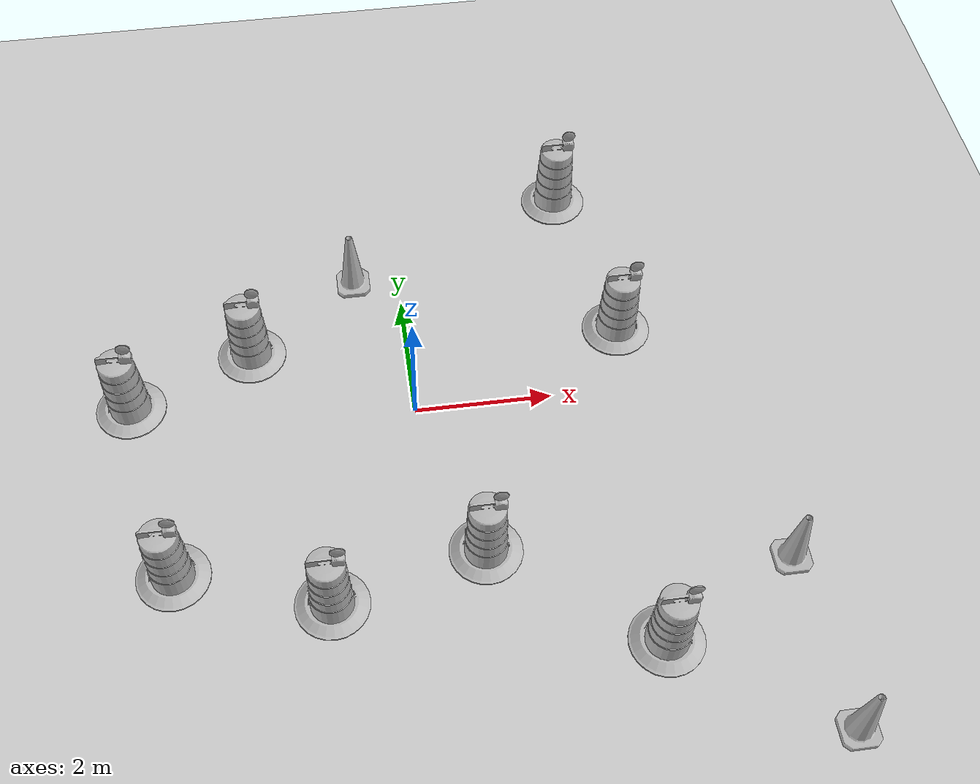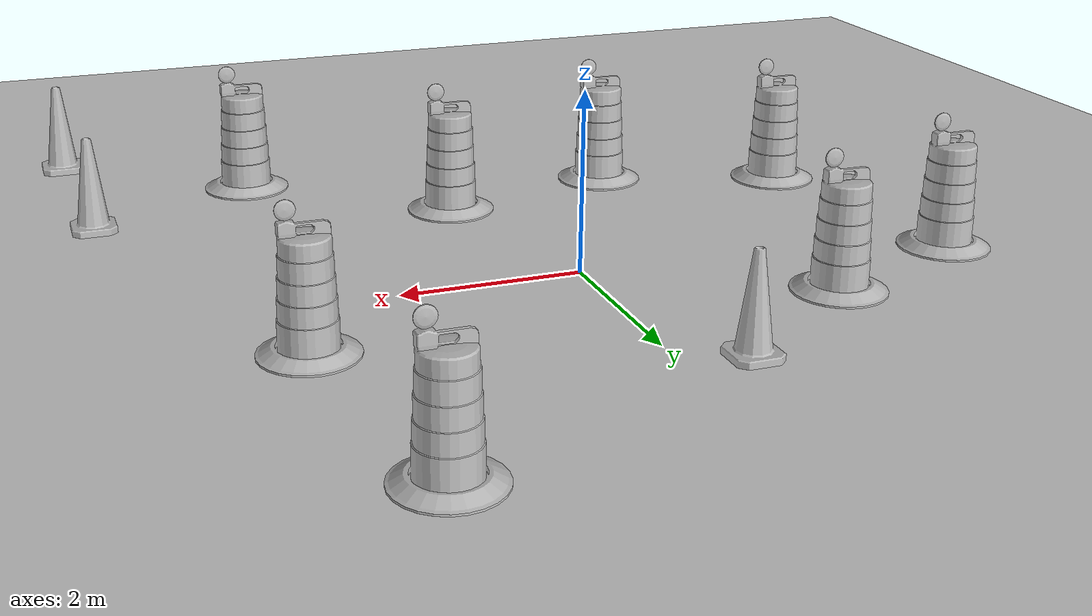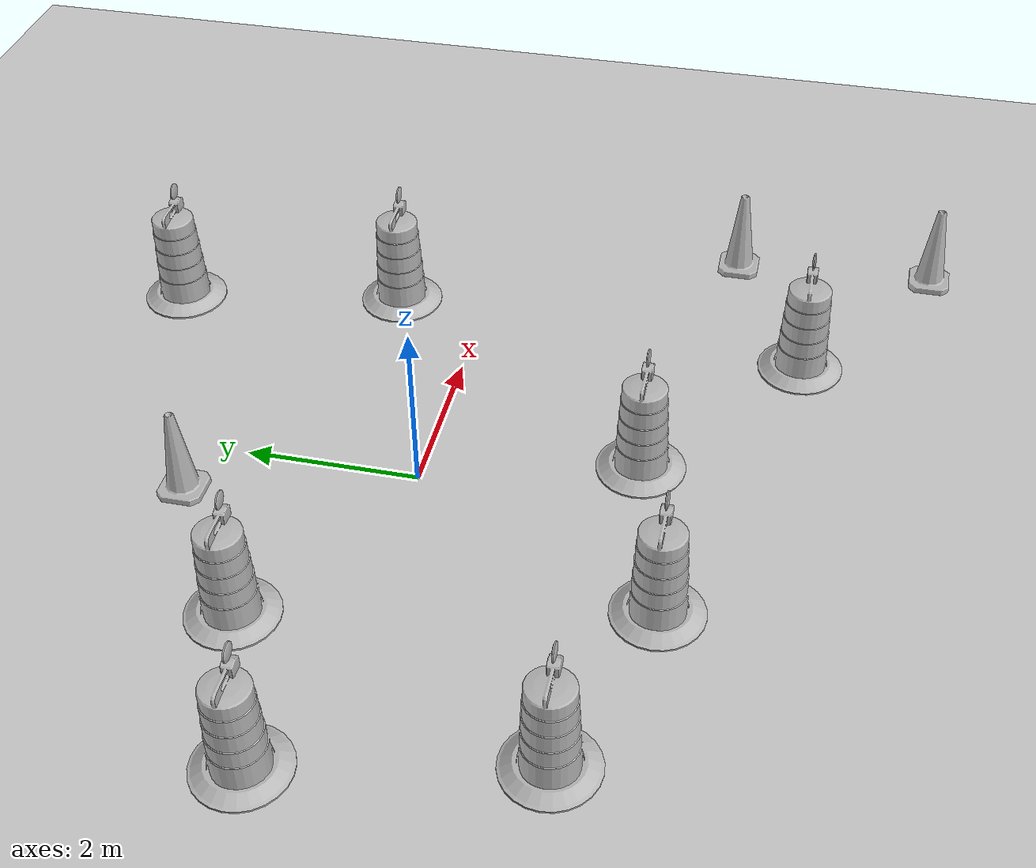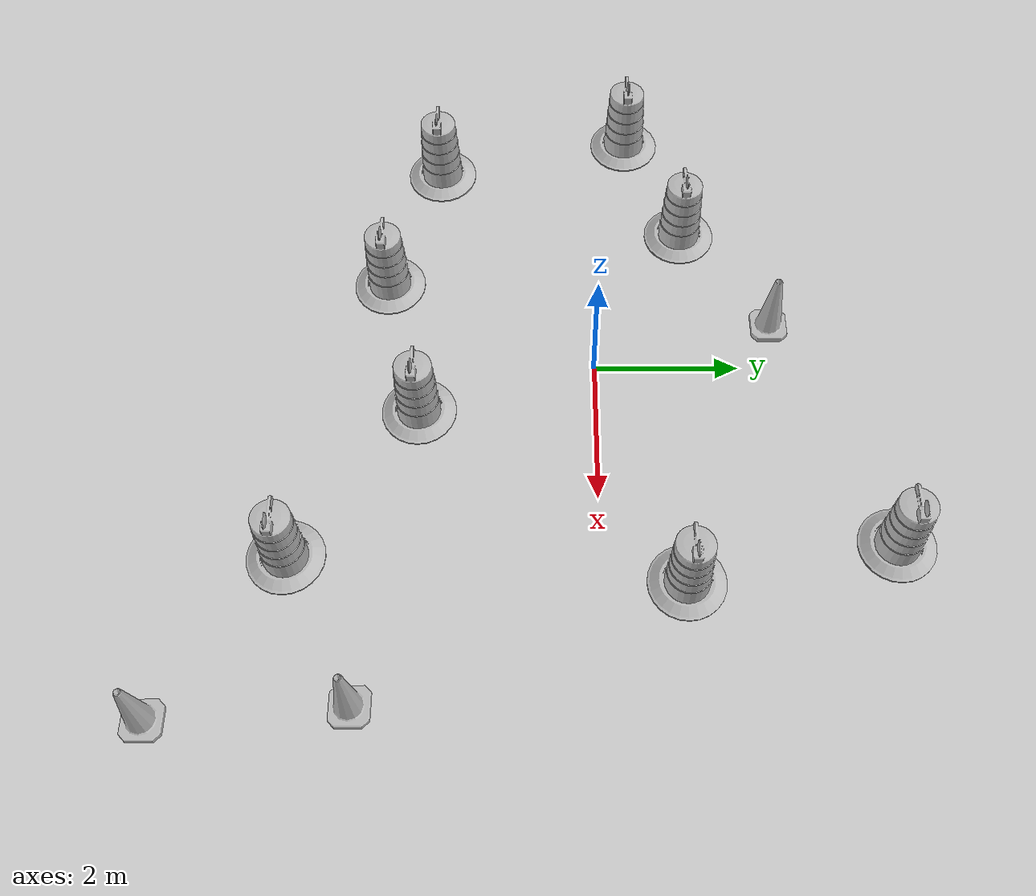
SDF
<sdf version="1.7">
 <world name="default">
  <light name="sun" type="directional">
   <pose>0 0 10 0 -0 0</pose>
   <diffuse>0.8 0.8 0.8 1</diffuse>
   <specular>0.2 0.2 0.2 1</specular>
   <attenuation>
    <range>1000</range>
    <constant>0.9</constant>
    <linear>0.01</linear>
    <quadratic>0.001</quadratic>
   </attenuation>
   <direction>-0.5 0.1 -0.9</direction>
   <spot><inner_angle>0</inner_angle><outer_angle>0</outer_angle><falloff>0</falloff></spot>
  </light>
  <model name="ground_plane">
   <static>1</static>
   <link name="link">
    <collision name="collision">
     <geometry><plane><normal>0 0 1</normal><size>100 100</size></plane></geometry>
     <surface><friction><ode><mu>100</mu><mu2>50</mu2></ode></friction></surface>
    </collision>
    <visual name="visual">
     <cast_shadows>0</cast_shadows>
     <geometry><plane><normal>0 0 1</normal><size>100 100</size></plane></geometry>
     <material>
      <script><uri>file://media/materials/scripts/gazebo.material</uri><name>Gazebo/Grey</name></script>
     </material>
    </visual>
   </link>
  </model>
  <gravity>0 0 -9.8</gravity>
  <magnetic_field>6e-06 2.3e-05 -4.2e-05</magnetic_field>
  <atmosphere type="adiabatic"/>
  <physics type="ode">
   <max_step_size>0.001</max_step_size>
   <real_time_factor>1</real_time_factor>
   <real_time_update_rate>1000</real_time_update_rate>
  </physics>
  <scene><ambient>0.4 0.4 0.4 1</ambient><background>0.7 0.7 0.7 1</background><shadows>1</shadows></scene>
  <audio><device>default</device></audio>
  <spherical_coordinates>
   <surface_model>EARTH_WGS84</surface_model>
   <latitude_deg>0</latitude_deg>
   <longitude_deg>0</longitude_deg>
   <elevation>0</elevation>
   <heading_deg>0</heading_deg>
  </spherical_coordinates>
  <model name="Construction Cone">
   <link name="link">
    <collision name="collision">
     <geometry>
      <mesh><scale>10 10 10</scale><uri>model://construction_cone/meshes/construction_cone.dae</uri></mesh>
     </geometry>
    </collision>
    <visual name="visual">
     <geometry>
      <mesh><scale>10 10 10</scale><uri>model://construction_cone/meshes/construction_cone.dae</uri></mesh>
     </geometry>
    </visual>
    <inertial>
     <inertia><ixx>1</ixx><ixy>0</ixy><ixz>0</ixz><iyy>1</iyy><iyz>0</iyz><izz>1</izz></inertia>
     <mass>1</mass>
    </inertial>
   </link>
   <pose>4.9183 -5.49758 -0 0 -1e-06 0</pose>
  </model>
  <model name="Construction Barrel">
   <link name="link">
    <inertial>
     <pose>0 0 0.4 0 -0 0</pose>
     <mass>500</mass>
     <inertia><ixx>51.2096</ixx><iyy>51.2096</iyy><izz>25</izz><ixy>0</ixy><ixz>0</ixz><iyz>0</iyz></inertia>
    </inertial>
    <collision name="collision">
     <geometry><mesh><uri>model://construction_barrel/meshes/construction_barrel.dae</uri></mesh></geometry>
    </collision>
    <visual name="visual">
     <geometry><mesh><uri>model://construction_barrel/meshes/construction_barrel.dae</uri></mesh></geometry>
    </visual>
   </link>
   <pose>2.70086 3.82418 -0 1e-06 -1e-06 -2.8e-05</pose>
  </model>
  <model name="Construction Barrel_0">
   <link name="link">
    <inertial>
     <pose>0 0 0.4 0 -0 0</pose>
     <mass>500</mass>
     <inertia><ixx>51.2096</ixx><iyy>51.2096</iyy><izz>25</izz><ixy>0</ixy><ixz>0</ixz><iyz>0</iyz></inertia>
    </inertial>
    <collision name="collision">
     <geometry><mesh><uri>model://construction_barrel/meshes/construction_barrel.dae</uri></mesh></geometry>
    </collision>
    <visual name="visual">
     <geometry><mesh><uri>model://construction_barrel/meshes/construction_barrel.dae</uri></mesh></geometry>
    </visual>
   </link>
   <pose>-4.12475 0.563868 -1e-06 -3e-06 -1e-06 -2.8e-05</pose>
  </model>
  <model name="Construction Barrel_clone">
   <link name="link">
    <inertial>
     <pose>0 0 0.4 0 -0 0</pose>
     <mass>500</mass>
     <inertia><ixx>51.2096</ixx><iyy>51.2096</iyy><izz>25</izz><ixy>0</ixy><ixz>0</ixz><iyz>0</iyz></inertia>
    </inertial>
    <collision name="collision">
     <geometry><mesh><uri>model://construction_barrel/meshes/construction_barrel.dae</uri></mesh></geometry>
    </collision>
    <visual name="visual">
     <geometry><mesh><uri>model://construction_barrel/meshes/construction_barrel.dae</uri></mesh></geometry>
    </visual>
   </link>
   <pose>3.19468 1.09309 -0 1e-06 -1e-06 -2.9e-05</pose>
  </model>
  <model name="Construction Barrel_clone_0">
   <link name="link">
    <inertial>
     <pose>0 0 0.4 0 -0 0</pose>
     <mass>500</mass>
     <inertia><ixx>51.2096</ixx><iyy>51.2096</iyy><izz>25</izz><ixy>0</ixy><ixz>0</ixz><iyz>0</iyz></inertia>
    </inertial>
    <collision name="collision">
     <geometry><mesh><uri>model://construction_barrel/meshes/construction_barrel.dae</uri></mesh></geometry>
    </collision>
    <visual name="visual">
     <geometry><mesh><uri>model://construction_barrel/meshes/construction_barrel.dae</uri></mesh></geometry>
    </visual>
   </link>
   <pose>0.678723 -2.40854 -0 0 -0 -3.2e-05</pose>
  </model>
  <model name="Construction Barrel_clone_1">
   <link name="link">
    <inertial>
     <pose>0 0 0.4 0 -0 0</pose>
     <mass>500</mass>
     <inertia><ixx>51.2096</ixx><iyy>51.2096</iyy><izz>25</izz><ixy>0</ixy><ixz>0</ixz><iyz>0</iyz></inertia>
    </inertial>
    <collision name="collision">
     <geometry><mesh><uri>model://construction_barrel/meshes/construction_barrel.dae</uri></mesh></geometry>
    </collision>
    <visual name="visual">
     <geometry><mesh><uri>model://construction_barrel/meshes/construction_barrel.dae</uri></mesh></geometry>
    </visual>
   </link>
   <pose>-2.33338 1.31838 -0 1e-06 -1e-06 -2.8e-05</pose>
  </model>
  <model name="Construction Cone_clone">
   <link name="link">
    <collision name="collision">
     <geometry>
      <mesh><scale>10 10 10</scale><uri>model://construction_cone/meshes/construction_cone.dae</uri></mesh>
     </geometry>
    </collision>
    <visual name="visual">
     <geometry>
      <mesh><scale>10 10 10</scale><uri>model://construction_cone/meshes/construction_cone.dae</uri></mesh>
     </geometry>
    </visual>
    <inertial>
     <inertia><ixx>1</ixx><ixy>0</ixy><ixz>0</ixz><iyy>1</iyy><iyz>0</iyz><izz>1</izz></inertia>
     <mass>1</mass>
    </inertial>
   </link>
   <pose>4.76559 -3.04638 -0 0 -0 0</pose>
  </model>
  <model name="Construction Cone_clone_1">
   <link name="link">
    <collision name="collision">
     <geometry>
      <mesh><scale>10 10 10</scale><uri>model://construction_cone/meshes/construction_cone.dae</uri></mesh>
     </geometry>
    </collision>
    <visual name="visual">
     <geometry>
      <mesh><scale>10 10 10</scale><uri>model://construction_cone/meshes/construction_cone.dae</uri></mesh>
     </geometry>
    </visual>
    <inertial>
     <inertia><ixx>1</ixx><ixy>0</ixy><ixz>0</ixz><iyy>1</iyy><iyz>0</iyz><izz>1</izz></inertia>
     <mass>1</mass>
    </inertial>
   </link>
   <pose>-0.701016 2.50002 -0 -0 -0 -0</pose>
  </model>
  <model name="Construction Barrel_clone_clone">
   <link name="link">
    <inertial>
     <pose>0 0 0.4 0 -0 0</pose>
     <mass>500</mass>
     <inertia><ixx>51.2096</ixx><iyy>51.2096</iyy><izz>25</izz><ixy>0</ixy><ixz>0</ixz><iyz>0</iyz></inertia>
    </inertial>
    <collision name="collision">
     <geometry><mesh><uri>model://construction_barrel/meshes/construction_barrel.dae</uri></mesh></geometry>
    </collision>
    <visual name="visual">
     <geometry><mesh><uri>model://construction_barrel/meshes/construction_barrel.dae</uri></mesh></geometry>
    </visual>
   </link>
   <pose>-3.53389 -2.24487 0 0 0 -3.4e-05</pose>
  </model>
  <model name="Construction Barrel_clone_1_clone">
   <link name="link">
    <inertial>
     <pose>0 0 0.4 0 -0 0</pose>
     <mass>500</mass>
     <inertia><ixx>51.2096</ixx><iyy>51.2096</iyy><izz>25</izz><ixy>0</ixy><ixz>0</ixz><iyz>0</iyz></inertia>
    </inertial>
    <collision name="collision">
     <geometry><mesh><uri>model://construction_barrel/meshes/construction_barrel.dae</uri></mesh></geometry>
    </collision>
    <visual name="visual">
     <geometry><mesh><uri>model://construction_barrel/meshes/construction_barrel.dae</uri></mesh></geometry>
    </visual>
   </link>
   <pose>2.82172 -4.01092 0 1e-06 1e-06 -3e-05</pose>
  </model>
  <model name="Construction Barrel_clone_1_clone_0">
   <link name="link">
    <inertial>
     <pose>0 0 0.4 0 -0 0</pose>
     <mass>500</mass>
     <inertia><ixx>51.2096</ixx><iyy>51.2096</iyy><izz>25</izz><ixy>0</ixy><ixz>0</ixz><iyz>0</iyz></inertia>
    </inertial>
    <collision name="collision">
     <geometry><mesh><uri>model://construction_barrel/meshes/construction_barrel.dae</uri></mesh></geometry>
    </collision>
    <visual name="visual">
     <geometry><mesh><uri>model://construction_barrel/meshes/construction_barrel.dae</uri></mesh></geometry>
    </visual>
   </link>
   <pose>-1.45026 -2.93091 -0 0 0 -2.7e-05</pose>
  </model>
 </world>
</sdf>
